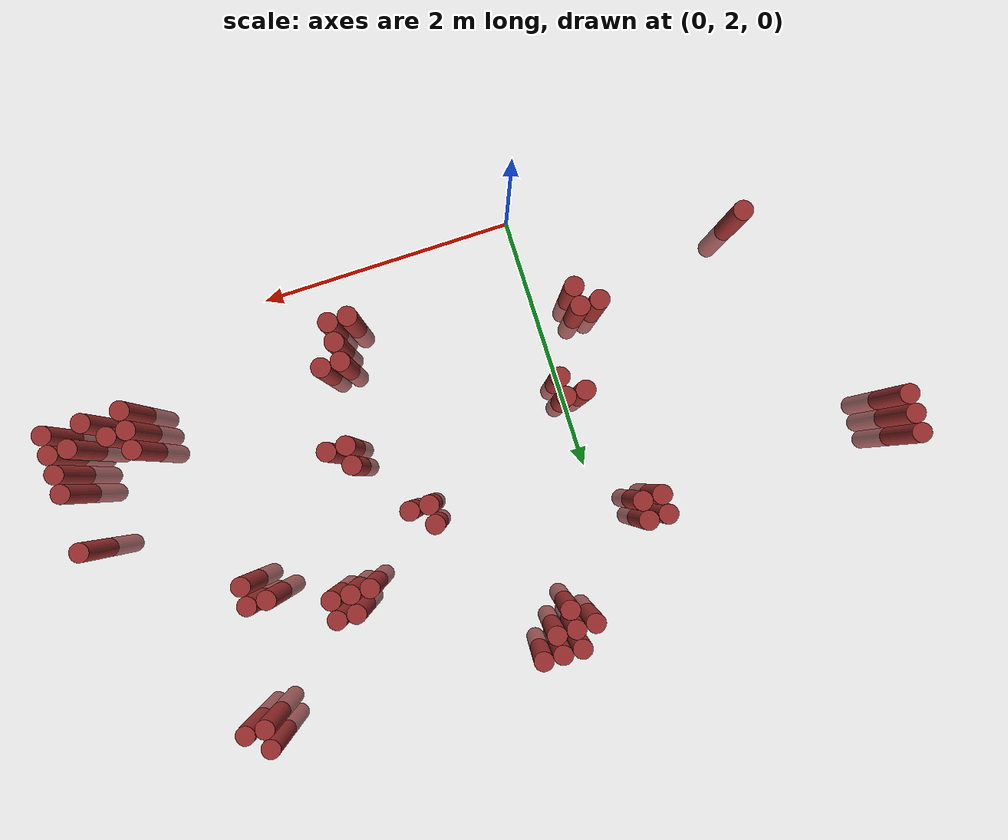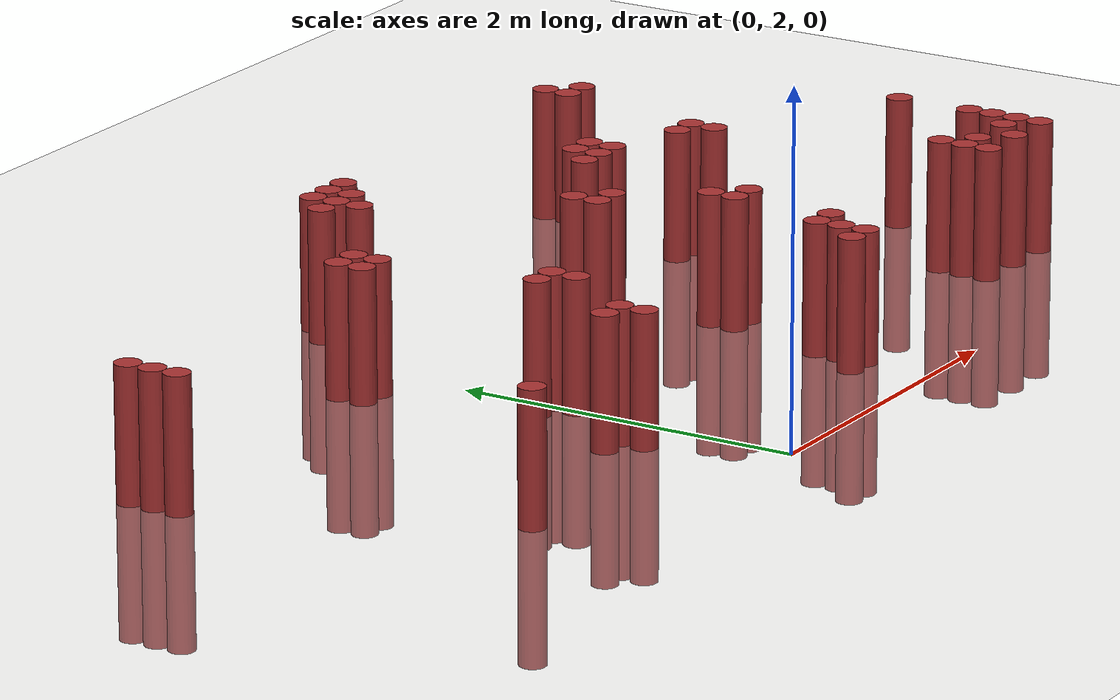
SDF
<sdf version="1.6">
 <world name="default">
  <model name="ground_plane">
   <static>1</static>
   <link name="link">
    <collision name="collision">
     <geometry><plane><normal>0 0 1</normal><size>100 100</size></plane></geometry>
     <surface><friction><ode><mu>100</mu><mu2>50</mu2></ode></friction></surface>
    </collision>
    <visual name="visual">
     <cast_shadows>0</cast_shadows>
     <geometry><plane><normal>0 0 1</normal><size>100 100</size></plane></geometry>
     <material>
      <script><uri>file://media/materials/scripts/gazebo.material</uri><name>Gazebo/Grey</name></script>
     </material>
    </visual>
   </link>
  </model>
  <model name="unit_cylinder_299">
   <static>1</static>
   <pose>-2.375000 4.225000 0.000000 0.000000 0.000000 0.000000</pose>
   <link name="link">
    <inertial>
     <mass>1</mass>
     <inertia><ixx>0.145833</ixx><ixy>0</ixy><ixz>0</ixz><iyy>0.145833</iyy><iyz>0</iyz><izz>0.125</izz></inertia>
    </inertial>
    <collision name="collision">
     <geometry><cylinder><radius>0.075000</radius><length>1.5</length></cylinder></geometry>
    </collision>
    <visual name="visual">
     <geometry><cylinder><radius>0.075000</radius><length>1.5</length></cylinder></geometry>
     <material>
      <ambient>0.648000 0.192000 0.192000 1</ambient>
      <diffuse>0.648000 0.192000 0.192000 1</diffuse>
     </material>
     <material>
      <script><name>Gazebo/Grey</name><uri>file://media/materials/scripts/gazebo.material</uri></script>
     </material>
    </visual>
   </link>
  </model>
  <model name="unit_cylinder_300">
   <static>1</static>
   <pose>-2.375000 4.375000 0.000000 0.000000 0.000000 0.000000</pose>
   <link name="link">
    <inertial>
     <mass>1</mass>
     <inertia><ixx>0.145833</ixx><ixy>0</ixy><ixz>0</ixz><iyy>0.145833</iyy><iyz>0</iyz><izz>0.125</izz></inertia>
    </inertial>
    <collision name="collision">
     <geometry><cylinder><radius>0.075000</radius><length>1.5</length></cylinder></geometry>
    </collision>
    <visual name="visual">
     <geometry><cylinder><radius>0.075000</radius><length>1.5</length></cylinder></geometry>
     <material>
      <ambient>0.648000 0.192000 0.192000 1</ambient>
      <diffuse>0.648000 0.192000 0.192000 1</diffuse>
     </material>
     <material>
      <script><name>Gazebo/Grey</name><uri>file://media/materials/scripts/gazebo.material</uri></script>
     </material>
    </visual>
   </link>
  </model>
  <model name="unit_cylinder_301">
   <static>1</static>
   <pose>-2.375000 4.525000 0.000000 0.000000 0.000000 0.000000</pose>
   <link name="link">
    <inertial>
     <mass>1</mass>
     <inertia><ixx>0.145833</ixx><ixy>0</ixy><ixz>0</ixz><iyy>0.145833</iyy><iyz>0</iyz><izz>0.125</izz></inertia>
    </inertial>
    <collision name="collision">
     <geometry><cylinder><radius>0.075000</radius><length>1.5</length></cylinder></geometry>
    </collision>
    <visual name="visual">
     <geometry><cylinder><radius>0.075000</radius><length>1.5</length></cylinder></geometry>
     <material>
      <ambient>0.648000 0.192000 0.192000 1</ambient>
      <diffuse>0.648000 0.192000 0.192000 1</diffuse>
     </material>
     <material>
      <script><name>Gazebo/Grey</name><uri>file://media/materials/scripts/gazebo.material</uri></script>
     </material>
    </visual>
   </link>
  </model>
  <model name="unit_cylinder_312">
   <static>1</static>
   <pose>-1.625000 2.575000 0.000000 0.000000 0.000000 0.000000</pose>
   <link name="link">
    <inertial>
     <mass>1</mass>
     <inertia><ixx>0.145833</ixx><ixy>0</ixy><ixz>0</ixz><iyy>0.145833</iyy><iyz>0</iyz><izz>0.125</izz></inertia>
    </inertial>
    <collision name="collision">
     <geometry><cylinder><radius>0.075000</radius><length>1.5</length></cylinder></geometry>
    </collision>
    <visual name="visual">
     <geometry><cylinder><radius>0.075000</radius><length>1.5</length></cylinder></geometry>
     <material>
      <ambient>0.648000 0.192000 0.192000 1</ambient>
      <diffuse>0.648000 0.192000 0.192000 1</diffuse>
     </material>
     <material>
      <script><name>Gazebo/Grey</name><uri>file://media/materials/scripts/gazebo.material</uri></script>
     </material>
    </visual>
   </link>
  </model>
  <model name="unit_cylinder_334">
   <static>1</static>
   <pose>-0.425000 2.875000 0.000000 0.000000 0.000000 0.000000</pose>
   <link name="link">
    <inertial>
     <mass>1</mass>
     <inertia><ixx>0.145833</ixx><ixy>0</ixy><ixz>0</ixz><iyy>0.145833</iyy><iyz>0</iyz><izz>0.125</izz></inertia>
    </inertial>
    <collision name="collision">
     <geometry><cylinder><radius>0.075000</radius><length>1.5</length></cylinder></geometry>
    </collision>
    <visual name="visual">
     <geometry><cylinder><radius>0.075000</radius><length>1.5</length></cylinder></geometry>
     <material>
      <ambient>0.648000 0.192000 0.192000 1</ambient>
      <diffuse>0.648000 0.192000 0.192000 1</diffuse>
     </material>
     <material>
      <script><name>Gazebo/Grey</name><uri>file://media/materials/scripts/gazebo.material</uri></script>
     </material>
    </visual>
   </link>
  </model>
  <model name="unit_cylinder_335">
   <static>1</static>
   <pose>-0.425000 4.375000 0.000000 0.000000 0.000000 0.000000</pose>
   <link name="link">
    <inertial>
     <mass>1</mass>
     <inertia><ixx>0.145833</ixx><ixy>0</ixy><ixz>0</ixz><iyy>0.145833</iyy><iyz>0</iyz><izz>0.125</izz></inertia>
    </inertial>
    <collision name="collision">
     <geometry><cylinder><radius>0.075000</radius><length>1.5</length></cylinder></geometry>
    </collision>
    <visual name="visual">
     <geometry><cylinder><radius>0.075000</radius><length>1.5</length></cylinder></geometry>
     <material>
      <ambient>0.648000 0.192000 0.192000 1</ambient>
      <diffuse>0.648000 0.192000 0.192000 1</diffuse>
     </material>
     <material>
      <script><name>Gazebo/Grey</name><uri>file://media/materials/scripts/gazebo.material</uri></script>
     </material>
    </visual>
   </link>
  </model>
  <model name="unit_cylinder_336">
   <static>1</static>
   <pose>-0.425000 4.525000 0.000000 0.000000 0.000000 0.000000</pose>
   <link name="link">
    <inertial>
     <mass>1</mass>
     <inertia><ixx>0.145833</ixx><ixy>0</ixy><ixz>0</ixz><iyy>0.145833</iyy><iyz>0</iyz><izz>0.125</izz></inertia>
    </inertial>
    <collision name="collision">
     <geometry><cylinder><radius>0.075000</radius><length>1.5</length></cylinder></geometry>
    </collision>
    <visual name="visual">
     <geometry><cylinder><radius>0.075000</radius><length>1.5</length></cylinder></geometry>
     <material>
      <ambient>0.648000 0.192000 0.192000 1</ambient>
      <diffuse>0.648000 0.192000 0.192000 1</diffuse>
     </material>
     <material>
      <script><name>Gazebo/Grey</name><uri>file://media/materials/scripts/gazebo.material</uri></script>
     </material>
    </visual>
   </link>
  </model>
  <model name="unit_cylinder_338">
   <static>1</static>
   <pose>-0.275000 2.725000 0.000000 0.000000 0.000000 0.000000</pose>
   <link name="link">
    <inertial>
     <mass>1</mass>
     <inertia><ixx>0.145833</ixx><ixy>0</ixy><ixz>0</ixz><iyy>0.145833</iyy><iyz>0</iyz><izz>0.125</izz></inertia>
    </inertial>
    <collision name="collision">
     <geometry><cylinder><radius>0.075000</radius><length>1.5</length></cylinder></geometry>
    </collision>
    <visual name="visual">
     <geometry><cylinder><radius>0.075000</radius><length>1.5</length></cylinder></geometry>
     <material>
      <ambient>0.648000 0.192000 0.192000 1</ambient>
      <diffuse>0.648000 0.192000 0.192000 1</diffuse>
     </material>
     <material>
      <script><name>Gazebo/Grey</name><uri>file://media/materials/scripts/gazebo.material</uri></script>
     </material>
    </visual>
   </link>
  </model>
  <model name="unit_cylinder_339">
   <static>1</static>
   <pose>-0.275000 2.875000 0.000000 0.000000 0.000000 0.000000</pose>
   <link name="link">
    <inertial>
     <mass>1</mass>
     <inertia><ixx>0.145833</ixx><ixy>0</ixy><ixz>0</ixz><iyy>0.145833</iyy><iyz>0</iyz><izz>0.125</izz></inertia>
    </inertial>
    <collision name="collision">
     <geometry><cylinder><radius>0.075000</radius><length>1.5</length></cylinder></geometry>
    </collision>
    <visual name="visual">
     <geometry><cylinder><radius>0.075000</radius><length>1.5</length></cylinder></geometry>
     <material>
      <ambient>0.648000 0.192000 0.192000 1</ambient>
      <diffuse>0.648000 0.192000 0.192000 1</diffuse>
     </material>
     <material>
      <script><name>Gazebo/Grey</name><uri>file://media/materials/scripts/gazebo.material</uri></script>
     </material>
    </visual>
   </link>
  </model>
  <model name="unit_cylinder_340">
   <static>1</static>
   <pose>-0.275000 4.375000 0.000000 0.000000 0.000000 0.000000</pose>
   <link name="link">
    <inertial>
     <mass>1</mass>
     <inertia><ixx>0.145833</ixx><ixy>0</ixy><ixz>0</ixz><iyy>0.145833</iyy><iyz>0</iyz><izz>0.125</izz></inertia>
    </inertial>
    <collision name="collision">
     <geometry><cylinder><radius>0.075000</radius><length>1.5</length></cylinder></geometry>
    </collision>
    <visual name="visual">
     <geometry><cylinder><radius>0.075000</radius><length>1.5</length></cylinder></geometry>
     <material>
      <ambient>0.648000 0.192000 0.192000 1</ambient>
      <diffuse>0.648000 0.192000 0.192000 1</diffuse>
     </material>
     <material>
      <script><name>Gazebo/Grey</name><uri>file://media/materials/scripts/gazebo.material</uri></script>
     </material>
    </visual>
   </link>
  </model>
  <model name="unit_cylinder_341">
   <static>1</static>
   <pose>-0.275000 4.525000 0.000000 0.000000 0.000000 0.000000</pose>
   <link name="link">
    <inertial>
     <mass>1</mass>
     <inertia><ixx>0.145833</ixx><ixy>0</ixy><ixz>0</ixz><iyy>0.145833</iyy><iyz>0</iyz><izz>0.125</izz></inertia>
    </inertial>
    <collision name="collision">
     <geometry><cylinder><radius>0.075000</radius><length>1.5</length></cylinder></geometry>
    </collision>
    <visual name="visual">
     <geometry><cylinder><radius>0.075000</radius><length>1.5</length></cylinder></geometry>
     <material>
      <ambient>0.648000 0.192000 0.192000 1</ambient>
      <diffuse>0.648000 0.192000 0.192000 1</diffuse>
     </material>
     <material>
      <script><name>Gazebo/Grey</name><uri>file://media/materials/scripts/gazebo.material</uri></script>
     </material>
    </visual>
   </link>
  </model>
  <model name="unit_cylinder_343">
   <static>1</static>
   <pose>-0.125000 3.475000 0.000000 0.000000 0.000000 0.000000</pose>
   <link name="link">
    <inertial>
     <mass>1</mass>
     <inertia><ixx>0.145833</ixx><ixy>0</ixy><ixz>0</ixz><iyy>0.145833</iyy><iyz>0</iyz><izz>0.125</izz></inertia>
    </inertial>
    <collision name="collision">
     <geometry><cylinder><radius>0.075000</radius><length>1.5</length></cylinder></geometry>
    </collision>
    <visual name="visual">
     <geometry><cylinder><radius>0.075000</radius><length>1.5</length></cylinder></geometry>
     <material>
      <ambient>0.648000 0.192000 0.192000 1</ambient>
      <diffuse>0.648000 0.192000 0.192000 1</diffuse>
     </material>
     <material>
      <script><name>Gazebo/Grey</name><uri>file://media/materials/scripts/gazebo.material</uri></script>
     </material>
    </visual>
   </link>
  </model>
  <model name="unit_cylinder_346">
   <static>1</static>
   <pose>0.025000 3.325000 0.000000 0.000000 0.000000 0.000000</pose>
   <link name="link">
    <inertial>
     <mass>1</mass>
     <inertia><ixx>0.145833</ixx><ixy>0</ixy><ixz>0</ixz><iyy>0.145833</iyy><iyz>0</iyz><izz>0.125</izz></inertia>
    </inertial>
    <collision name="collision">
     <geometry><cylinder><radius>0.075000</radius><length>1.5</length></cylinder></geometry>
    </collision>
    <visual name="visual">
     <geometry><cylinder><radius>0.075000</radius><length>1.5</length></cylinder></geometry>
     <material>
      <ambient>0.648000 0.192000 0.192000 1</ambient>
      <diffuse>0.648000 0.192000 0.192000 1</diffuse>
     </material>
     <material>
      <script><name>Gazebo/Grey</name><uri>file://media/materials/scripts/gazebo.material</uri></script>
     </material>
    </visual>
   </link>
  </model>
  <model name="unit_cylinder_347">
   <static>1</static>
   <pose>0.025000 3.475000 0.000000 0.000000 0.000000 0.000000</pose>
   <link name="link">
    <inertial>
     <mass>1</mass>
     <inertia><ixx>0.145833</ixx><ixy>0</ixy><ixz>0</ixz><iyy>0.145833</iyy><iyz>0</iyz><izz>0.125</izz></inertia>
    </inertial>
    <collision name="collision">
     <geometry><cylinder><radius>0.075000</radius><length>1.5</length></cylinder></geometry>
    </collision>
    <visual name="visual">
     <geometry><cylinder><radius>0.075000</radius><length>1.5</length></cylinder></geometry>
     <material>
      <ambient>0.648000 0.192000 0.192000 1</ambient>
      <diffuse>0.648000 0.192000 0.192000 1</diffuse>
     </material>
     <material>
      <script><name>Gazebo/Grey</name><uri>file://media/materials/scripts/gazebo.material</uri></script>
     </material>
    </visual>
   </link>
  </model>
  <model name="unit_cylinder_348">
   <static>1</static>
   <pose>0.325000 5.125000 0.000000 0.000000 0.000000 0.000000</pose>
   <link name="link">
    <inertial>
     <mass>1</mass>
     <inertia><ixx>0.145833</ixx><ixy>0</ixy><ixz>0</ixz><iyy>0.145833</iyy><iyz>0</iyz><izz>0.125</izz></inertia>
    </inertial>
    <collision name="collision">
     <geometry><cylinder><radius>0.075000</radius><length>1.5</length></cylinder></geometry>
    </collision>
    <visual name="visual">
     <geometry><cylinder><radius>0.075000</radius><length>1.5</length></cylinder></geometry>
     <material>
      <ambient>0.648000 0.192000 0.192000 1</ambient>
      <diffuse>0.648000 0.192000 0.192000 1</diffuse>
     </material>
     <material>
      <script><name>Gazebo/Grey</name><uri>file://media/materials/scripts/gazebo.material</uri></script>
     </material>
    </visual>
   </link>
  </model>
  <model name="unit_cylinder_349">
   <static>1</static>
   <pose>0.475000 4.975000 0.000000 0.000000 0.000000 0.000000</pose>
   <link name="link">
    <inertial>
     <mass>1</mass>
     <inertia><ixx>0.145833</ixx><ixy>0</ixy><ixz>0</ixz><iyy>0.145833</iyy><iyz>0</iyz><izz>0.125</izz></inertia>
    </inertial>
    <collision name="collision">
     <geometry><cylinder><radius>0.075000</radius><length>1.5</length></cylinder></geometry>
    </collision>
    <visual name="visual">
     <geometry><cylinder><radius>0.075000</radius><length>1.5</length></cylinder></geometry>
     <material>
      <ambient>0.648000 0.192000 0.192000 1</ambient>
      <diffuse>0.648000 0.192000 0.192000 1</diffuse>
     </material>
     <material>
      <script><name>Gazebo/Grey</name><uri>file://media/materials/scripts/gazebo.material</uri></script>
     </material>
    </visual>
   </link>
  </model>
  <model name="unit_cylinder_350">
   <static>1</static>
   <pose>0.475000 5.125000 0.000000 0.000000 0.000000 0.000000</pose>
   <link name="link">
    <inertial>
     <mass>1</mass>
     <inertia><ixx>0.145833</ixx><ixy>0</ixy><ixz>0</ixz><iyy>0.145833</iyy><iyz>0</iyz><izz>0.125</izz></inertia>
    </inertial>
    <collision name="collision">
     <geometry><cylinder><radius>0.075000</radius><length>1.5</length></cylinder></geometry>
    </collision>
    <visual name="visual">
     <geometry><cylinder><radius>0.075000</radius><length>1.5</length></cylinder></geometry>
     <material>
      <ambient>0.648000 0.192000 0.192000 1</ambient>
      <diffuse>0.648000 0.192000 0.192000 1</diffuse>
     </material>
     <material>
      <script><name>Gazebo/Grey</name><uri>file://media/materials/scripts/gazebo.material</uri></script>
     </material>
    </visual>
   </link>
  </model>
  <model name="unit_cylinder_351">
   <static>1</static>
   <pose>0.475000 5.275000 0.000000 0.000000 0.000000 0.000000</pose>
   <link name="link">
    <inertial>
     <mass>1</mass>
     <inertia><ixx>0.145833</ixx><ixy>0</ixy><ixz>0</ixz><iyy>0.145833</iyy><iyz>0</iyz><izz>0.125</izz></inertia>
    </inertial>
    <collision name="collision">
     <geometry><cylinder><radius>0.075000</radius><length>1.5</length></cylinder></geometry>
    </collision>
    <visual name="visual">
     <geometry><cylinder><radius>0.075000</radius><length>1.5</length></cylinder></geometry>
     <material>
      <ambient>0.648000 0.192000 0.192000 1</ambient>
      <diffuse>0.648000 0.192000 0.192000 1</diffuse>
     </material>
     <material>
      <script><name>Gazebo/Grey</name><uri>file://media/materials/scripts/gazebo.material</uri></script>
     </material>
    </visual>
   </link>
  </model>
  <model name="unit_cylinder_353">
   <static>1</static>
   <pose>0.625000 5.125000 0.000000 0.000000 0.000000 0.000000</pose>
   <link name="link">
    <inertial>
     <mass>1</mass>
     <inertia><ixx>0.145833</ixx><ixy>0</ixy><ixz>0</ixz><iyy>0.145833</iyy><iyz>0</iyz><izz>0.125</izz></inertia>
    </inertial>
    <collision name="collision">
     <geometry><cylinder><radius>0.075000</radius><length>1.5</length></cylinder></geometry>
    </collision>
    <visual name="visual">
     <geometry><cylinder><radius>0.075000</radius><length>1.5</length></cylinder></geometry>
     <material>
      <ambient>0.648000 0.192000 0.192000 1</ambient>
      <diffuse>0.648000 0.192000 0.192000 1</diffuse>
     </material>
     <material>
      <script><name>Gazebo/Grey</name><uri>file://media/materials/scripts/gazebo.material</uri></script>
     </material>
    </visual>
   </link>
  </model>
  <model name="unit_cylinder_354">
   <static>1</static>
   <pose>0.625000 5.275000 0.000000 0.000000 0.000000 0.000000</pose>
   <link name="link">
    <inertial>
     <mass>1</mass>
     <inertia><ixx>0.145833</ixx><ixy>0</ixy><ixz>0</ixz><iyy>0.145833</iyy><iyz>0</iyz><izz>0.125</izz></inertia>
    </inertial>
    <collision name="collision">
     <geometry><cylinder><radius>0.075000</radius><length>1.5</length></cylinder></geometry>
    </collision>
    <visual name="visual">
     <geometry><cylinder><radius>0.075000</radius><length>1.5</length></cylinder></geometry>
     <material>
      <ambient>0.648000 0.192000 0.192000 1</ambient>
      <diffuse>0.648000 0.192000 0.192000 1</diffuse>
     </material>
     <material>
      <script><name>Gazebo/Grey</name><uri>file://media/materials/scripts/gazebo.material</uri></script>
     </material>
    </visual>
   </link>
  </model>
  <model name="unit_cylinder_357">
   <static>1</static>
   <pose>0.775000 5.275000 0.000000 0.000000 0.000000 0.000000</pose>
   <link name="link">
    <inertial>
     <mass>1</mass>
     <inertia><ixx>0.145833</ixx><ixy>0</ixy><ixz>0</ixz><iyy>0.145833</iyy><iyz>0</iyz><izz>0.125</izz></inertia>
    </inertial>
    <collision name="collision">
     <geometry><cylinder><radius>0.075000</radius><length>1.5</length></cylinder></geometry>
    </collision>
    <visual name="visual">
     <geometry><cylinder><radius>0.075000</radius><length>1.5</length></cylinder></geometry>
     <material>
      <ambient>0.648000 0.192000 0.192000 1</ambient>
      <diffuse>0.648000 0.192000 0.192000 1</diffuse>
     </material>
     <material>
      <script><name>Gazebo/Grey</name><uri>file://media/materials/scripts/gazebo.material</uri></script>
     </material>
    </visual>
   </link>
  </model>
  <model name="unit_cylinder_360">
   <static>1</static>
   <pose>1.225000 3.925000 0.000000 0.000000 0.000000 0.000000</pose>
   <link name="link">
    <inertial>
     <mass>1</mass>
     <inertia><ixx>0.145833</ixx><ixy>0</ixy><ixz>0</ixz><iyy>0.145833</iyy><iyz>0</iyz><izz>0.125</izz></inertia>
    </inertial>
    <collision name="collision">
     <geometry><cylinder><radius>0.075000</radius><length>1.5</length></cylinder></geometry>
    </collision>
    <visual name="visual">
     <geometry><cylinder><radius>0.075000</radius><length>1.5</length></cylinder></geometry>
     <material>
      <ambient>0.648000 0.192000 0.192000 1</ambient>
      <diffuse>0.648000 0.192000 0.192000 1</diffuse>
     </material>
     <material>
      <script><name>Gazebo/Grey</name><uri>file://media/materials/scripts/gazebo.material</uri></script>
     </material>
    </visual>
   </link>
  </model>
  <model name="unit_cylinder_361">
   <static>1</static>
   <pose>1.225000 4.075000 0.000000 0.000000 0.000000 0.000000</pose>
   <link name="link">
    <inertial>
     <mass>1</mass>
     <inertia><ixx>0.145833</ixx><ixy>0</ixy><ixz>0</ixz><iyy>0.145833</iyy><iyz>0</iyz><izz>0.125</izz></inertia>
    </inertial>
    <collision name="collision">
     <geometry><cylinder><radius>0.075000</radius><length>1.5</length></cylinder></geometry>
    </collision>
    <visual name="visual">
     <geometry><cylinder><radius>0.075000</radius><length>1.5</length></cylinder></geometry>
     <material>
      <ambient>0.648000 0.192000 0.192000 1</ambient>
      <diffuse>0.648000 0.192000 0.192000 1</diffuse>
     </material>
     <material>
      <script><name>Gazebo/Grey</name><uri>file://media/materials/scripts/gazebo.material</uri></script>
     </material>
    </visual>
   </link>
  </model>
  <model name="unit_cylinder_365">
   <static>1</static>
   <pose>1.375000 2.425000 0.000000 0.000000 0.000000 0.000000</pose>
   <link name="link">
    <inertial>
     <mass>1</mass>
     <inertia><ixx>0.145833</ixx><ixy>0</ixy><ixz>0</ixz><iyy>0.145833</iyy><iyz>0</iyz><izz>0.125</izz></inertia>
    </inertial>
    <collision name="collision">
     <geometry><cylinder><radius>0.075000</radius><length>1.5</length></cylinder></geometry>
    </collision>
    <visual name="visual">
     <geometry><cylinder><radius>0.075000</radius><length>1.5</length></cylinder></geometry>
     <material>
      <ambient>0.648000 0.192000 0.192000 1</ambient>
      <diffuse>0.648000 0.192000 0.192000 1</diffuse>
     </material>
     <material>
      <script><name>Gazebo/Grey</name><uri>file://media/materials/scripts/gazebo.material</uri></script>
     </material>
    </visual>
   </link>
  </model>
  <model name="unit_cylinder_366">
   <static>1</static>
   <pose>1.375000 3.925000 0.000000 0.000000 0.000000 0.000000</pose>
   <link name="link">
    <inertial>
     <mass>1</mass>
     <inertia><ixx>0.145833</ixx><ixy>0</ixy><ixz>0</ixz><iyy>0.145833</iyy><iyz>0</iyz><izz>0.125</izz></inertia>
    </inertial>
    <collision name="collision">
     <geometry><cylinder><radius>0.075000</radius><length>1.5</length></cylinder></geometry>
    </collision>
    <visual name="visual">
     <geometry><cylinder><radius>0.075000</radius><length>1.5</length></cylinder></geometry>
     <material>
      <ambient>0.648000 0.192000 0.192000 1</ambient>
      <diffuse>0.648000 0.192000 0.192000 1</diffuse>
     </material>
     <material>
      <script><name>Gazebo/Grey</name><uri>file://media/materials/scripts/gazebo.material</uri></script>
     </material>
    </visual>
   </link>
  </model>
  <model name="unit_cylinder_373">
   <static>1</static>
   <pose>1.525000 2.425000 0.000000 0.000000 0.000000 0.000000</pose>
   <link name="link">
    <inertial>
     <mass>1</mass>
     <inertia><ixx>0.145833</ixx><ixy>0</ixy><ixz>0</ixz><iyy>0.145833</iyy><iyz>0</iyz><izz>0.125</izz></inertia>
    </inertial>
    <collision name="collision">
     <geometry><cylinder><radius>0.075000</radius><length>1.5</length></cylinder></geometry>
    </collision>
    <visual name="visual">
     <geometry><cylinder><radius>0.075000</radius><length>1.5</length></cylinder></geometry>
     <material>
      <ambient>0.648000 0.192000 0.192000 1</ambient>
      <diffuse>0.648000 0.192000 0.192000 1</diffuse>
     </material>
     <material>
      <script><name>Gazebo/Grey</name><uri>file://media/materials/scripts/gazebo.material</uri></script>
     </material>
    </visual>
   </link>
  </model>
  <model name="unit_cylinder_374">
   <static>1</static>
   <pose>1.525000 2.575000 0.000000 0.000000 0.000000 0.000000</pose>
   <link name="link">
    <inertial>
     <mass>1</mass>
     <inertia><ixx>0.145833</ixx><ixy>0</ixy><ixz>0</ixz><iyy>0.145833</iyy><iyz>0</iyz><izz>0.125</izz></inertia>
    </inertial>
    <collision name="collision">
     <geometry><cylinder><radius>0.075000</radius><length>1.5</length></cylinder></geometry>
    </collision>
    <visual name="visual">
     <geometry><cylinder><radius>0.075000</radius><length>1.5</length></cylinder></geometry>
     <material>
      <ambient>0.648000 0.192000 0.192000 1</ambient>
      <diffuse>0.648000 0.192000 0.192000 1</diffuse>
     </material>
     <material>
      <script><name>Gazebo/Grey</name><uri>file://media/materials/scripts/gazebo.material</uri></script>
     </material>
    </visual>
   </link>
  </model>
  <model name="unit_cylinder_375">
   <static>1</static>
   <pose>1.525000 2.725000 0.000000 0.000000 0.000000 0.000000</pose>
   <link name="link">
    <inertial>
     <mass>1</mass>
     <inertia><ixx>0.145833</ixx><ixy>0</ixy><ixz>0</ixz><iyy>0.145833</iyy><iyz>0</iyz><izz>0.125</izz></inertia>
    </inertial>
    <collision name="collision">
     <geometry><cylinder><radius>0.075000</radius><length>1.5</length></cylinder></geometry>
    </collision>
    <visual name="visual">
     <geometry><cylinder><radius>0.075000</radius><length>1.5</length></cylinder></geometry>
     <material>
      <ambient>0.648000 0.192000 0.192000 1</ambient>
      <diffuse>0.648000 0.192000 0.192000 1</diffuse>
     </material>
     <material>
      <script><name>Gazebo/Grey</name><uri>file://media/materials/scripts/gazebo.material</uri></script>
     </material>
    </visual>
   </link>
  </model>
  <model name="unit_cylinder_378">
   <static>1</static>
   <pose>1.675000 2.725000 0.000000 0.000000 0.000000 0.000000</pose>
   <link name="link">
    <inertial>
     <mass>1</mass>
     <inertia><ixx>0.145833</ixx><ixy>0</ixy><ixz>0</ixz><iyy>0.145833</iyy><iyz>0</iyz><izz>0.125</izz></inertia>
    </inertial>
    <collision name="collision">
     <geometry><cylinder><radius>0.075000</radius><length>1.5</length></cylinder></geometry>
    </collision>
    <visual name="visual">
     <geometry><cylinder><radius>0.075000</radius><length>1.5</length></cylinder></geometry>
     <material>
      <ambient>0.648000 0.192000 0.192000 1</ambient>
      <diffuse>0.648000 0.192000 0.192000 1</diffuse>
     </material>
     <material>
      <script><name>Gazebo/Grey</name><uri>file://media/materials/scripts/gazebo.material</uri></script>
     </material>
    </visual>
   </link>
  </model>
  <model name="unit_cylinder_379">
   <static>1</static>
   <pose>1.675000 3.325000 0.000000 0.000000 0.000000 0.000000</pose>
   <link name="link">
    <inertial>
     <mass>1</mass>
     <inertia><ixx>0.145833</ixx><ixy>0</ixy><ixz>0</ixz><iyy>0.145833</iyy><iyz>0</iyz><izz>0.125</izz></inertia>
    </inertial>
    <collision name="collision">
     <geometry><cylinder><radius>0.075000</radius><length>1.5</length></cylinder></geometry>
    </collision>
    <visual name="visual">
     <geometry><cylinder><radius>0.075000</radius><length>1.5</length></cylinder></geometry>
     <material>
      <ambient>0.648000 0.192000 0.192000 1</ambient>
      <diffuse>0.648000 0.192000 0.192000 1</diffuse>
     </material>
     <material>
      <script><name>Gazebo/Grey</name><uri>file://media/materials/scripts/gazebo.material</uri></script>
     </material>
    </visual>
   </link>
  </model>
  <model name="unit_cylinder_380">
   <static>1</static>
   <pose>1.675000 3.475000 0.000000 0.000000 0.000000 0.000000</pose>
   <link name="link">
    <inertial>
     <mass>1</mass>
     <inertia><ixx>0.145833</ixx><ixy>0</ixy><ixz>0</ixz><iyy>0.145833</iyy><iyz>0</iyz><izz>0.125</izz></inertia>
    </inertial>
    <collision name="collision">
     <geometry><cylinder><radius>0.075000</radius><length>1.5</length></cylinder></geometry>
    </collision>
    <visual name="visual">
     <geometry><cylinder><radius>0.075000</radius><length>1.5</length></cylinder></geometry>
     <material>
      <ambient>0.648000 0.192000 0.192000 1</ambient>
      <diffuse>0.648000 0.192000 0.192000 1</diffuse>
     </material>
     <material>
      <script><name>Gazebo/Grey</name><uri>file://media/materials/scripts/gazebo.material</uri></script>
     </material>
    </visual>
   </link>
  </model>
  <model name="unit_cylinder_381">
   <static>1</static>
   <pose>1.825000 3.325000 0.000000 0.000000 0.000000 0.000000</pose>
   <link name="link">
    <inertial>
     <mass>1</mass>
     <inertia><ixx>0.145833</ixx><ixy>0</ixy><ixz>0</ixz><iyy>0.145833</iyy><iyz>0</iyz><izz>0.125</izz></inertia>
    </inertial>
    <collision name="collision">
     <geometry><cylinder><radius>0.075000</radius><length>1.5</length></cylinder></geometry>
    </collision>
    <visual name="visual">
     <geometry><cylinder><radius>0.075000</radius><length>1.5</length></cylinder></geometry>
     <material>
      <ambient>0.648000 0.192000 0.192000 1</ambient>
      <diffuse>0.648000 0.192000 0.192000 1</diffuse>
     </material>
     <material>
      <script><name>Gazebo/Grey</name><uri>file://media/materials/scripts/gazebo.material</uri></script>
     </material>
    </visual>
   </link>
  </model>
  <model name="unit_cylinder_382">
   <static>1</static>
   <pose>1.825000 4.375000 0.000000 0.000000 0.000000 0.000000</pose>
   <link name="link">
    <inertial>
     <mass>1</mass>
     <inertia><ixx>0.145833</ixx><ixy>0</ixy><ixz>0</ixz><iyy>0.145833</iyy><iyz>0</iyz><izz>0.125</izz></inertia>
    </inertial>
    <collision name="collision">
     <geometry><cylinder><radius>0.075000</radius><length>1.5</length></cylinder></geometry>
    </collision>
    <visual name="visual">
     <geometry><cylinder><radius>0.075000</radius><length>1.5</length></cylinder></geometry>
     <material>
      <ambient>0.648000 0.192000 0.192000 1</ambient>
      <diffuse>0.648000 0.192000 0.192000 1</diffuse>
     </material>
     <material>
      <script><name>Gazebo/Grey</name><uri>file://media/materials/scripts/gazebo.material</uri></script>
     </material>
    </visual>
   </link>
  </model>
  <model name="unit_cylinder_383">
   <static>1</static>
   <pose>1.975000 4.375000 0.000000 0.000000 0.000000 0.000000</pose>
   <link name="link">
    <inertial>
     <mass>1</mass>
     <inertia><ixx>0.145833</ixx><ixy>0</ixy><ixz>0</ixz><iyy>0.145833</iyy><iyz>0</iyz><izz>0.125</izz></inertia>
    </inertial>
    <collision name="collision">
     <geometry><cylinder><radius>0.075000</radius><length>1.5</length></cylinder></geometry>
    </collision>
    <visual name="visual">
     <geometry><cylinder><radius>0.075000</radius><length>1.5</length></cylinder></geometry>
     <material>
      <ambient>0.648000 0.192000 0.192000 1</ambient>
      <diffuse>0.648000 0.192000 0.192000 1</diffuse>
     </material>
     <material>
      <script><name>Gazebo/Grey</name><uri>file://media/materials/scripts/gazebo.material</uri></script>
     </material>
    </visual>
   </link>
  </model>
  <model name="unit_cylinder_384">
   <static>1</static>
   <pose>1.975000 4.525000 0.000000 0.000000 0.000000 0.000000</pose>
   <link name="link">
    <inertial>
     <mass>1</mass>
     <inertia><ixx>0.145833</ixx><ixy>0</ixy><ixz>0</ixz><iyy>0.145833</iyy><iyz>0</iyz><izz>0.125</izz></inertia>
    </inertial>
    <collision name="collision">
     <geometry><cylinder><radius>0.075000</radius><length>1.5</length></cylinder></geometry>
    </collision>
    <visual name="visual">
     <geometry><cylinder><radius>0.075000</radius><length>1.5</length></cylinder></geometry>
     <material>
      <ambient>0.648000 0.192000 0.192000 1</ambient>
      <diffuse>0.648000 0.192000 0.192000 1</diffuse>
     </material>
     <material>
      <script><name>Gazebo/Grey</name><uri>file://media/materials/scripts/gazebo.material</uri></script>
     </material>
    </visual>
   </link>
  </model>
  <model name="unit_cylinder_385">
   <static>1</static>
   <pose>2.125000 4.375000 0.000000 0.000000 0.000000 0.000000</pose>
   <link name="link">
    <inertial>
     <mass>1</mass>
     <inertia><ixx>0.145833</ixx><ixy>0</ixy><ixz>0</ixz><iyy>0.145833</iyy><iyz>0</iyz><izz>0.125</izz></inertia>
    </inertial>
    <collision name="collision">
     <geometry><cylinder><radius>0.075000</radius><length>1.5</length></cylinder></geometry>
    </collision>
    <visual name="visual">
     <geometry><cylinder><radius>0.075000</radius><length>1.5</length></cylinder></geometry>
     <material>
      <ambient>0.648000 0.192000 0.192000 1</ambient>
      <diffuse>0.648000 0.192000 0.192000 1</diffuse>
     </material>
     <material>
      <script><name>Gazebo/Grey</name><uri>file://media/materials/scripts/gazebo.material</uri></script>
     </material>
    </visual>
   </link>
  </model>
  <model name="unit_cylinder_386">
   <static>1</static>
   <pose>2.125000 4.525000 0.000000 0.000000 0.000000 0.000000</pose>
   <link name="link">
    <inertial>
     <mass>1</mass>
     <inertia><ixx>0.145833</ixx><ixy>0</ixy><ixz>0</ixz><iyy>0.145833</iyy><iyz>0</iyz><izz>0.125</izz></inertia>
    </inertial>
    <collision name="collision">
     <geometry><cylinder><radius>0.075000</radius><length>1.5</length></cylinder></geometry>
    </collision>
    <visual name="visual">
     <geometry><cylinder><radius>0.075000</radius><length>1.5</length></cylinder></geometry>
     <material>
      <ambient>0.648000 0.192000 0.192000 1</ambient>
      <diffuse>0.648000 0.192000 0.192000 1</diffuse>
     </material>
     <material>
      <script><name>Gazebo/Grey</name><uri>file://media/materials/scripts/gazebo.material</uri></script>
     </material>
    </visual>
   </link>
  </model>
  <model name="unit_cylinder_400">
   <static>1</static>
   <pose>2.575000 4.225000 0.000000 0.000000 0.000000 0.000000</pose>
   <link name="link">
    <inertial>
     <mass>1</mass>
     <inertia><ixx>0.145833</ixx><ixy>0</ixy><ixz>0</ixz><iyy>0.145833</iyy><iyz>0</iyz><izz>0.125</izz></inertia>
    </inertial>
    <collision name="collision">
     <geometry><cylinder><radius>0.075000</radius><length>1.5</length></cylinder></geometry>
    </collision>
    <visual name="visual">
     <geometry><cylinder><radius>0.075000</radius><length>1.5</length></cylinder></geometry>
     <material>
      <ambient>0.648000 0.192000 0.192000 1</ambient>
      <diffuse>0.648000 0.192000 0.192000 1</diffuse>
     </material>
     <material>
      <script><name>Gazebo/Grey</name><uri>file://media/materials/scripts/gazebo.material</uri></script>
     </material>
    </visual>
   </link>
  </model>
  <model name="unit_cylinder_404">
   <static>1</static>
   <pose>2.725000 4.075000 0.000000 0.000000 0.000000 0.000000</pose>
   <link name="link">
    <inertial>
     <mass>1</mass>
     <inertia><ixx>0.145833</ixx><ixy>0</ixy><ixz>0</ixz><iyy>0.145833</iyy><iyz>0</iyz><izz>0.125</izz></inertia>
    </inertial>
    <collision name="collision">
     <geometry><cylinder><radius>0.075000</radius><length>1.5</length></cylinder></geometry>
    </collision>
    <visual name="visual">
     <geometry><cylinder><radius>0.075000</radius><length>1.5</length></cylinder></geometry>
     <material>
      <ambient>0.648000 0.192000 0.192000 1</ambient>
      <diffuse>0.648000 0.192000 0.192000 1</diffuse>
     </material>
     <material>
      <script><name>Gazebo/Grey</name><uri>file://media/materials/scripts/gazebo.material</uri></script>
     </material>
    </visual>
   </link>
  </model>
  <model name="unit_cylinder_405">
   <static>1</static>
   <pose>2.725000 4.225000 0.000000 0.000000 0.000000 0.000000</pose>
   <link name="link">
    <inertial>
     <mass>1</mass>
     <inertia><ixx>0.145833</ixx><ixy>0</ixy><ixz>0</ixz><iyy>0.145833</iyy><iyz>0</iyz><izz>0.125</izz></inertia>
    </inertial>
    <collision name="collision">
     <geometry><cylinder><radius>0.075000</radius><length>1.5</length></cylinder></geometry>
    </collision>
    <visual name="visual">
     <geometry><cylinder><radius>0.075000</radius><length>1.5</length></cylinder></geometry>
     <material>
      <ambient>0.648000 0.192000 0.192000 1</ambient>
      <diffuse>0.648000 0.192000 0.192000 1</diffuse>
     </material>
     <material>
      <script><name>Gazebo/Grey</name><uri>file://media/materials/scripts/gazebo.material</uri></script>
     </material>
    </visual>
   </link>
  </model>
  <model name="unit_cylinder_407">
   <static>1</static>
   <pose>2.875000 5.125000 0.000000 0.000000 0.000000 0.000000</pose>
   <link name="link">
    <inertial>
     <mass>1</mass>
     <inertia><ixx>0.145833</ixx><ixy>0</ixy><ixz>0</ixz><iyy>0.145833</iyy><iyz>0</iyz><izz>0.125</izz></inertia>
    </inertial>
    <collision name="collision">
     <geometry><cylinder><radius>0.075000</radius><length>1.5</length></cylinder></geometry>
    </collision>
    <visual name="visual">
     <geometry><cylinder><radius>0.075000</radius><length>1.5</length></cylinder></geometry>
     <material>
      <ambient>0.648000 0.192000 0.192000 1</ambient>
      <diffuse>0.648000 0.192000 0.192000 1</diffuse>
     </material>
     <material>
      <script><name>Gazebo/Grey</name><uri>file://media/materials/scripts/gazebo.material</uri></script>
     </material>
    </visual>
   </link>
  </model>
  <model name="unit_cylinder_408">
   <static>1</static>
   <pose>2.875000 5.275000 0.000000 0.000000 0.000000 0.000000</pose>
   <link name="link">
    <inertial>
     <mass>1</mass>
     <inertia><ixx>0.145833</ixx><ixy>0</ixy><ixz>0</ixz><iyy>0.145833</iyy><iyz>0</iyz><izz>0.125</izz></inertia>
    </inertial>
    <collision name="collision">
     <geometry><cylinder><radius>0.075000</radius><length>1.5</length></cylinder></geometry>
    </collision>
    <visual name="visual">
     <geometry><cylinder><radius>0.075000</radius><length>1.5</length></cylinder></geometry>
     <material>
      <ambient>0.648000 0.192000 0.192000 1</ambient>
      <diffuse>0.648000 0.192000 0.192000 1</diffuse>
     </material>
     <material>
      <script><name>Gazebo/Grey</name><uri>file://media/materials/scripts/gazebo.material</uri></script>
     </material>
    </visual>
   </link>
  </model>
  <model name="unit_cylinder_409">
   <static>1</static>
   <pose>3.025000 5.125000 0.000000 0.000000 0.000000 0.000000</pose>
   <link name="link">
    <inertial>
     <mass>1</mass>
     <inertia><ixx>0.145833</ixx><ixy>0</ixy><ixz>0</ixz><iyy>0.145833</iyy><iyz>0</iyz><izz>0.125</izz></inertia>
    </inertial>
    <collision name="collision">
     <geometry><cylinder><radius>0.075000</radius><length>1.5</length></cylinder></geometry>
    </collision>
    <visual name="visual">
     <geometry><cylinder><radius>0.075000</radius><length>1.5</length></cylinder></geometry>
     <material>
      <ambient>0.648000 0.192000 0.192000 1</ambient>
      <diffuse>0.648000 0.192000 0.192000 1</diffuse>
     </material>
     <material>
      <script><name>Gazebo/Grey</name><uri>file://media/materials/scripts/gazebo.material</uri></script>
     </material>
    </visual>
   </link>
  </model>
  <model name="unit_cylinder_411">
   <static>1</static>
   <pose>3.175000 2.575000 0.000000 0.000000 0.000000 0.000000</pose>
   <link name="link">
    <inertial>
     <mass>1</mass>
     <inertia><ixx>0.145833</ixx><ixy>0</ixy><ixz>0</ixz><iyy>0.145833</iyy><iyz>0</iyz><izz>0.125</izz></inertia>
    </inertial>
    <collision name="collision">
     <geometry><cylinder><radius>0.075000</radius><length>1.5</length></cylinder></geometry>
    </collision>
    <visual name="visual">
     <geometry><cylinder><radius>0.075000</radius><length>1.5</length></cylinder></geometry>
     <material>
      <ambient>0.648000 0.192000 0.192000 1</ambient>
      <diffuse>0.648000 0.192000 0.192000 1</diffuse>
     </material>
     <material>
      <script><name>Gazebo/Grey</name><uri>file://media/materials/scripts/gazebo.material</uri></script>
     </material>
    </visual>
   </link>
  </model>
  <model name="unit_cylinder_412">
   <static>1</static>
   <pose>3.175000 2.725000 0.000000 0.000000 0.000000 0.000000</pose>
   <link name="link">
    <inertial>
     <mass>1</mass>
     <inertia><ixx>0.145833</ixx><ixy>0</ixy><ixz>0</ixz><iyy>0.145833</iyy><iyz>0</iyz><izz>0.125</izz></inertia>
    </inertial>
    <collision name="collision">
     <geometry><cylinder><radius>0.075000</radius><length>1.5</length></cylinder></geometry>
    </collision>
    <visual name="visual">
     <geometry><cylinder><radius>0.075000</radius><length>1.5</length></cylinder></geometry>
     <material>
      <ambient>0.648000 0.192000 0.192000 1</ambient>
      <diffuse>0.648000 0.192000 0.192000 1</diffuse>
     </material>
     <material>
      <script><name>Gazebo/Grey</name><uri>file://media/materials/scripts/gazebo.material</uri></script>
     </material>
    </visual>
   </link>
  </model>
  <model name="unit_cylinder_413">
   <static>1</static>
   <pose>3.175000 2.875000 0.000000 0.000000 0.000000 0.000000</pose>
   <link name="link">
    <inertial>
     <mass>1</mass>
     <inertia><ixx>0.145833</ixx><ixy>0</ixy><ixz>0</ixz><iyy>0.145833</iyy><iyz>0</iyz><izz>0.125</izz></inertia>
    </inertial>
    <collision name="collision">
     <geometry><cylinder><radius>0.075000</radius><length>1.5</length></cylinder></geometry>
    </collision>
    <visual name="visual">
     <geometry><cylinder><radius>0.075000</radius><length>1.5</length></cylinder></geometry>
     <material>
      <ambient>0.648000 0.192000 0.192000 1</ambient>
      <diffuse>0.648000 0.192000 0.192000 1</diffuse>
     </material>
     <material>
      <script><name>Gazebo/Grey</name><uri>file://media/materials/scripts/gazebo.material</uri></script>
     </material>
    </visual>
   </link>
  </model>
  <model name="unit_cylinder_416">
   <static>1</static>
   <pose>3.325000 2.725000 0.000000 0.000000 0.000000 0.000000</pose>
   <link name="link">
    <inertial>
     <mass>1</mass>
     <inertia><ixx>0.145833</ixx><ixy>0</ixy><ixz>0</ixz><iyy>0.145833</iyy><iyz>0</iyz><izz>0.125</izz></inertia>
    </inertial>
    <collision name="collision">
     <geometry><cylinder><radius>0.075000</radius><length>1.5</length></cylinder></geometry>
    </collision>
    <visual name="visual">
     <geometry><cylinder><radius>0.075000</radius><length>1.5</length></cylinder></geometry>
     <material>
      <ambient>0.648000 0.192000 0.192000 1</ambient>
      <diffuse>0.648000 0.192000 0.192000 1</diffuse>
     </material>
     <material>
      <script><name>Gazebo/Grey</name><uri>file://media/materials/scripts/gazebo.material</uri></script>
     </material>
    </visual>
   </link>
  </model>
  <model name="unit_cylinder_419">
   <static>1</static>
   <pose>3.475000 2.575000 0.000000 0.000000 0.000000 0.000000</pose>
   <link name="link">
    <inertial>
     <mass>1</mass>
     <inertia><ixx>0.145833</ixx><ixy>0</ixy><ixz>0</ixz><iyy>0.145833</iyy><iyz>0</iyz><izz>0.125</izz></inertia>
    </inertial>
    <collision name="collision">
     <geometry><cylinder><radius>0.075000</radius><length>1.5</length></cylinder></geometry>
    </collision>
    <visual name="visual">
     <geometry><cylinder><radius>0.075000</radius><length>1.5</length></cylinder></geometry>
     <material>
      <ambient>0.648000 0.192000 0.192000 1</ambient>
      <diffuse>0.648000 0.192000 0.192000 1</diffuse>
     </material>
     <material>
      <script><name>Gazebo/Grey</name><uri>file://media/materials/scripts/gazebo.material</uri></script>
     </material>
    </visual>
   </link>
  </model>
  <model name="unit_cylinder_422">
   <static>1</static>
   <pose>3.625000 2.725000 0.000000 0.000000 0.000000 0.000000</pose>
   <link name="link">
    <inertial>
     <mass>1</mass>
     <inertia><ixx>0.145833</ixx><ixy>0</ixy><ixz>0</ixz><iyy>0.145833</iyy><iyz>0</iyz><izz>0.125</izz></inertia>
    </inertial>
    <collision name="collision">
     <geometry><cylinder><radius>0.075000</radius><length>1.5</length></cylinder></geometry>
    </collision>
    <visual name="visual">
     <geometry><cylinder><radius>0.075000</radius><length>1.5</length></cylinder></geometry>
     <material>
      <ambient>0.648000 0.192000 0.192000 1</ambient>
      <diffuse>0.648000 0.192000 0.192000 1</diffuse>
     </material>
     <material>
      <script><name>Gazebo/Grey</name><uri>file://media/materials/scripts/gazebo.material</uri></script>
     </material>
    </visual>
   </link>
  </model>
  <model name="unit_cylinder_431">
   <static>1</static>
   <pose>3.775000 2.575000 0.000000 0.000000 0.000000 0.000000</pose>
   <link name="link">
    <inertial>
     <mass>1</mass>
     <inertia><ixx>0.145833</ixx><ixy>0</ixy><ixz>0</ixz><iyy>0.145833</iyy><iyz>0</iyz><izz>0.125</izz></inertia>
    </inertial>
    <collision name="collision">
     <geometry><cylinder><radius>0.075000</radius><length>1.5</length></cylinder></geometry>
    </collision>
    <visual name="visual">
     <geometry><cylinder><radius>0.075000</radius><length>1.5</length></cylinder></geometry>
     <material>
      <ambient>0.648000 0.192000 0.192000 1</ambient>
      <diffuse>0.648000 0.192000 0.192000 1</diffuse>
     </material>
     <material>
      <script><name>Gazebo/Grey</name><uri>file://media/materials/scripts/gazebo.material</uri></script>
     </material>
    </visual>
   </link>
  </model>
  <model name="unit_cylinder_432">
   <static>1</static>
   <pose>3.775000 2.725000 0.000000 0.000000 0.000000 0.000000</pose>
   <link name="link">
    <inertial>
     <mass>1</mass>
     <inertia><ixx>0.145833</ixx><ixy>0</ixy><ixz>0</ixz><iyy>0.145833</iyy><iyz>0</iyz><izz>0.125</izz></inertia>
    </inertial>
    <collision name="collision">
     <geometry><cylinder><radius>0.075000</radius><length>1.5</length></cylinder></geometry>
    </collision>
    <visual name="visual">
     <geometry><cylinder><radius>0.075000</radius><length>1.5</length></cylinder></geometry>
     <material>
      <ambient>0.648000 0.192000 0.192000 1</ambient>
      <diffuse>0.648000 0.192000 0.192000 1</diffuse>
     </material>
     <material>
      <script><name>Gazebo/Grey</name><uri>file://media/materials/scripts/gazebo.material</uri></script>
     </material>
    </visual>
   </link>
  </model>
  <model name="unit_cylinder_433">
   <static>1</static>
   <pose>3.775000 2.875000 0.000000 0.000000 0.000000 0.000000</pose>
   <link name="link">
    <inertial>
     <mass>1</mass>
     <inertia><ixx>0.145833</ixx><ixy>0</ixy><ixz>0</ixz><iyy>0.145833</iyy><iyz>0</iyz><izz>0.125</izz></inertia>
    </inertial>
    <collision name="collision">
     <geometry><cylinder><radius>0.075000</radius><length>1.5</length></cylinder></geometry>
    </collision>
    <visual name="visual">
     <geometry><cylinder><radius>0.075000</radius><length>1.5</length></cylinder></geometry>
     <material>
      <ambient>0.648000 0.192000 0.192000 1</ambient>
      <diffuse>0.648000 0.192000 0.192000 1</diffuse>
     </material>
     <material>
      <script><name>Gazebo/Grey</name><uri>file://media/materials/scripts/gazebo.material</uri></script>
     </material>
    </visual>
   </link>
  </model>
  <model name="unit_cylinder_434">
   <static>1</static>
   <pose>3.775000 3.025000 0.000000 0.000000 0.000000 0.000000</pose>
   <link name="link">
    <inertial>
     <mass>1</mass>
     <inertia><ixx>0.145833</ixx><ixy>0</ixy><ixz>0</ixz><iyy>0.145833</iyy><iyz>0</iyz><izz>0.125</izz></inertia>
    </inertial>
    <collision name="collision">
     <geometry><cylinder><radius>0.075000</radius><length>1.5</length></cylinder></geometry>
    </collision>
    <visual name="visual">
     <geometry><cylinder><radius>0.075000</radius><length>1.5</length></cylinder></geometry>
     <material>
      <ambient>0.648000 0.192000 0.192000 1</ambient>
      <diffuse>0.648000 0.192000 0.192000 1</diffuse>
     </material>
     <material>
      <script><name>Gazebo/Grey</name><uri>file://media/materials/scripts/gazebo.material</uri></script>
     </material>
    </visual>
   </link>
  </model>
  <model name="unit_cylinder_435">
   <static>1</static>
   <pose>3.775000 3.475000 0.000000 0.000000 0.000000 0.000000</pose>
   <link name="link">
    <inertial>
     <mass>1</mass>
     <inertia><ixx>0.145833</ixx><ixy>0</ixy><ixz>0</ixz><iyy>0.145833</iyy><iyz>0</iyz><izz>0.125</izz></inertia>
    </inertial>
    <collision name="collision">
     <geometry><cylinder><radius>0.075000</radius><length>1.5</length></cylinder></geometry>
    </collision>
    <visual name="visual">
     <geometry><cylinder><radius>0.075000</radius><length>1.5</length></cylinder></geometry>
     <material>
      <ambient>0.648000 0.192000 0.192000 1</ambient>
      <diffuse>0.648000 0.192000 0.192000 1</diffuse>
     </material>
     <material>
      <script><name>Gazebo/Grey</name><uri>file://media/materials/scripts/gazebo.material</uri></script>
     </material>
    </visual>
   </link>
  </model>
 </world>
</sdf>
